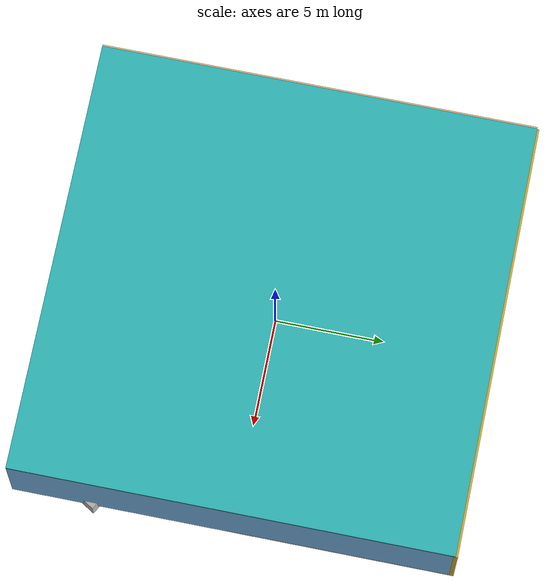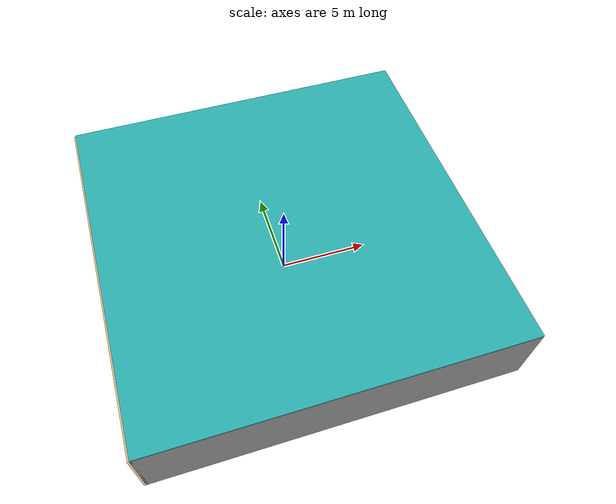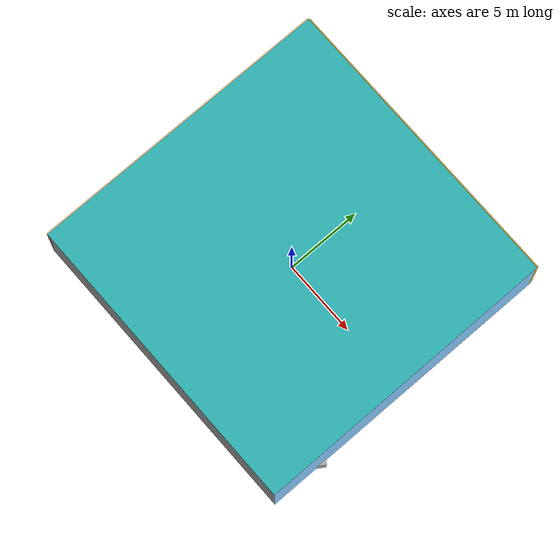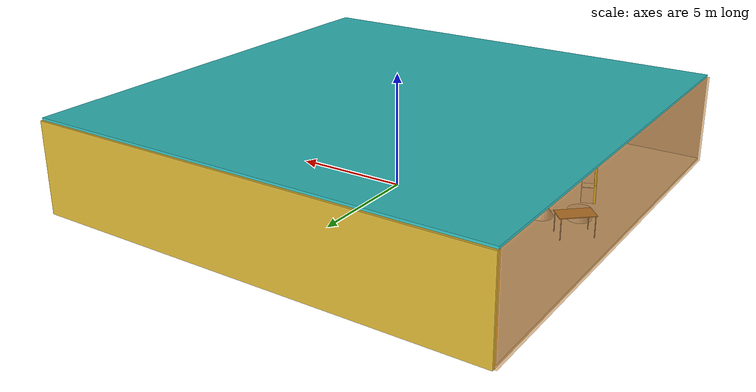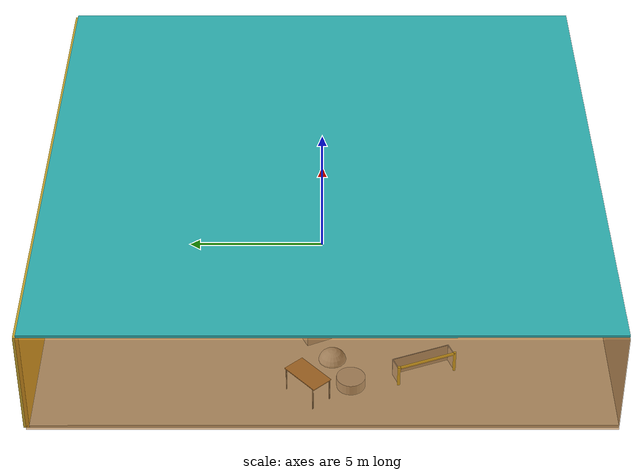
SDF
<sdf version="1.4">
 <world name="default">
  <physics type="ode">
   <max_step_size>0.001</max_step_size>
   <real_time_factor>1</real_time_factor>
   <real_time_update_rate>1000</real_time_update_rate>
   <gravity>0 0 -9.8</gravity>
  </physics>
  <scene><ambient>0.4 0.4 0.4 1</ambient><background>0.7 0.7 0.7 1</background><shadows>1</shadows></scene>
  <model name="Surrounding">
   <static>1</static>
   <link name="Ceiling">
    <collision name="Ceiling_Collision"><geometry><box><size>20 20 0.1</size></box></geometry></collision>
    <visual name="Ceiling_Visual">
     <geometry><box><size>20 20 0.1</size></box></geometry>
     <material>
      <script><uri>file://media/materials/scripts/gazebo.material</uri><name>Gazebo/Turquoise</name></script>
     </material>
    </visual>
    <pose>0 0 4.05 0 0 0</pose>
   </link>
   <link name="Wall_South">
    <collision name="Wall_South_Collision">
     <geometry><box><size>20 0 4</size></box></geometry>
     <pose>0 0 2 0 -0 0</pose>
    </collision>
    <visual name="Wall_South_Visual">
     <pose>0 0 2 0 -0 0</pose>
     <geometry><box><size>20 0 4</size></box></geometry>
     <material>
      <script><uri>file://media/materials/scripts/gazebo.material</uri><name>Gazebo/Grey</name></script>
     </material>
    </visual>
    <velocity_decay><linear>0</linear><angular>0</angular></velocity_decay>
    <pose>0 -10 0 0 -0 0</pose>
   </link>
   <link name="Wall_East">
    <collision name="Wall_21_Collision">
     <geometry><box><size>20 0 4</size></box></geometry>
     <pose>0 0 2 0 -0 0</pose>
    </collision>
    <visual name="Wall_21_Visual">
     <pose>0 0 2 0 -0 0</pose>
     <geometry><box><size>20 0 4</size></box></geometry>
     <material>
      <script><uri>file://media/materials/scripts/gazebo.material</uri><name>Gazebo/SkyBlue</name></script>
     </material>
    </visual>
    <velocity_decay><linear>0</linear><angular>0</angular></velocity_decay>
    <pose>10 0 0 0 -0 1.5708</pose>
   </link>
   <link name="Wall_North">
    <collision name="Wall_22_Collision">
     <geometry><box><size>20 0.2 4</size></box></geometry>
     <pose>0 0 2 0 -0 0</pose>
    </collision>
    <visual name="Wall_22_Visual">
     <pose>0 0 2 0 -0 0</pose>
     <geometry><box><size>20 0.2 4</size></box></geometry>
     <material>
      <script><uri>file://media/materials/scripts/gazebo.material</uri><name>Gazebo/Gold</name></script>
     </material>
    </visual>
    <velocity_decay><linear>0</linear><angular>0</angular></velocity_decay>
    <pose>0 10 0 0 -0 0</pose>
   </link>
   <link name="Wall_West">
    <collision name="Wall_23_Collision">
     <geometry><box><size>20 0.2 4</size></box></geometry>
     <pose>0 0 2 0 -0 0</pose>
    </collision>
    <visual name="Wall_23_Visual">
     <pose>0 0 2 0 -0 0</pose>
     <geometry><box><size>20 0.2 4</size></box></geometry>
     <material>
      <script>
       <uri>file://media/materials/scripts/gazebo.material</uri>
       <name>Gazebo/OrangeTransparent</name>
      </script>
     </material>
    </visual>
    <velocity_decay><linear>0</linear><angular>0</angular></velocity_decay>
    <pose>-10 0 0 0 0 -1.5708</pose>
   </link>
   <link name="Ground_link">
    <collision name="collision">
     <pose>0 0 .05 0 -0 0</pose>
     <geometry><box><size>20 20 0.1</size></box></geometry>
    </collision>
    <visual name="visual">
     <pose>0 0 .05 0 -0 0</pose>
     <geometry><box><size>20 20 0.1</size></box></geometry>
     <material>
      <script><uri>file://media/materials/scripts/gazebo.material</uri><name>Gazebo/CeilingTiled</name></script>
     </material>
    </visual>
   </link>
   <static>1</static>
  </model>
  <spherical_coordinates>
   <surface_model>EARTH_WGS84</surface_model>
   <latitude_deg>0</latitude_deg>
   <longitude_deg>0</longitude_deg>
   <elevation>0</elevation>
   <heading_deg>0</heading_deg>
  </spherical_coordinates>
  <light name="lightball_0" type="diffuse">
   <diffuse>0.8 0.8 0.8 1</diffuse>
   <specular>0.2 0.2 0.2 1</specular>
   <attenuation>
    <range>100</range>
    <constant>0.7</constant>
    <linear>0.01</linear>
    <quadratic>0.001</quadratic>
   </attenuation>
   <direction>-0.5 0.1 -0.9</direction>
   <pose>1.31809419975 3.7624394383 3.7663878023 0 0 0</pose>
  </light>
  <light name="lightball_1" type="diffuse">
   <diffuse>0.8 0.8 0.8 1</diffuse>
   <specular>0.2 0.2 0.2 1</specular>
   <attenuation>
    <range>100</range>
    <constant>0.7</constant>
    <linear>0.01</linear>
    <quadratic>0.001</quadratic>
   </attenuation>
   <direction>-0.5 0.1 -0.9</direction>
   <pose>-3.49124344889 5.14822945441 1.70522012227 0 0 0</pose>
  </light>
  <light name="lightball_2" type="diffuse">
   <diffuse>0.8 0.8 0.8 1</diffuse>
   <specular>0.2 0.2 0.2 1</specular>
   <attenuation>
    <range>100</range>
    <constant>0.7</constant>
    <linear>0.01</linear>
    <quadratic>0.001</quadratic>
   </attenuation>
   <direction>-0.5 0.1 -0.9</direction>
   <pose>-7.7331564308 -8.68293055108 2.81908288709 0 0 0</pose>
  </light>
  <light name="lightball_3" type="diffuse">
   <diffuse>0.8 0.8 0.8 1</diffuse>
   <specular>0.2 0.2 0.2 1</specular>
   <attenuation>
    <range>100</range>
    <constant>0.7</constant>
    <linear>0.01</linear>
    <quadratic>0.001</quadratic>
   </attenuation>
   <direction>-0.5 0.1 -0.9</direction>
   <pose>-4.11002397769 -4.3227743629 2.2890257885 0 0 0</pose>
  </light>
  <light name="lightball_4" type="diffuse">
   <diffuse>0.8 0.8 0.8 1</diffuse>
   <specular>0.2 0.2 0.2 1</specular>
   <attenuation>
    <range>100</range>
    <constant>0.7</constant>
    <linear>0.01</linear>
    <quadratic>0.001</quadratic>
   </attenuation>
   <direction>-0.5 0.1 -0.9</direction>
   <pose>6.4340778802 0.0581703827773 0.99752403209 0 0 0</pose>
  </light>
  <light name="lightball_5" type="diffuse">
   <diffuse>0.8 0.8 0.8 1</diffuse>
   <specular>0.2 0.2 0.2 1</specular>
   <attenuation>
    <range>100</range>
    <constant>0.7</constant>
    <linear>0.01</linear>
    <quadratic>0.001</quadratic>
   </attenuation>
   <direction>-0.5 0.1 -0.9</direction>
   <pose>-7.34231533399 -6.52768720771 2.11752604429 0 0 0</pose>
  </light>
  <light name="lightball_6" type="diffuse">
   <diffuse>0.8 0.8 0.8 1</diffuse>
   <specular>0.2 0.2 0.2 1</specular>
   <attenuation>
    <range>100</range>
    <constant>0.7</constant>
    <linear>0.01</linear>
    <quadratic>0.001</quadratic>
   </attenuation>
   <direction>-0.5 0.1 -0.9</direction>
   <pose>-4.28935899662 -2.42383731844 1.10638566534 0 0 0</pose>
  </light>
  <light name="lightball_7" type="diffuse">
   <diffuse>0.8 0.8 0.8 1</diffuse>
   <specular>0.2 0.2 0.2 1</specular>
   <attenuation>
    <range>100</range>
    <constant>0.7</constant>
    <linear>0.01</linear>
    <quadratic>0.001</quadratic>
   </attenuation>
   <direction>-0.5 0.1 -0.9</direction>
   <pose>4.83279750317 5.37291648895 2.74209255325 0 0 0</pose>
  </light>
  <light name="lightball_8" type="diffuse">
   <diffuse>0.8 0.8 0.8 1</diffuse>
   <specular>0.2 0.2 0.2 1</specular>
   <attenuation>
    <range>100</range>
    <constant>0.7</constant>
    <linear>0.01</linear>
    <quadratic>0.001</quadratic>
   </attenuation>
   <direction>-0.5 0.1 -0.9</direction>
   <pose>7.4575868039 7.51884803377 1.94773568615 0 0 0</pose>
  </light>
  <light name="lightball_9" type="diffuse">
   <diffuse>0.8 0.8 0.8 1</diffuse>
   <specular>0.2 0.2 0.2 1</specular>
   <attenuation>
    <range>100</range>
    <constant>0.7</constant>
    <linear>0.01</linear>
    <quadratic>0.001</quadratic>
   </attenuation>
   <direction>-0.5 0.1 -0.9</direction>
   <pose>7.65203134073 8.46458279565 3.3821570941 0 0 0</pose>
  </light>
  <light name="lightball_10" type="diffuse">
   <diffuse>0.8 0.8 0.8 1</diffuse>
   <specular>0.2 0.2 0.2 1</specular>
   <attenuation>
    <range>100</range>
    <constant>0.7</constant>
    <linear>0.01</linear>
    <quadratic>0.001</quadratic>
   </attenuation>
   <direction>-0.5 0.1 -0.9</direction>
   <pose>5.77894563974 1.27858443804 1.32175248871 0 0 0</pose>
  </light>
  <include>
   <uri>model://robocup_3Dsim_goal</uri>
   <pose>-7.58286324256 -3.61073978958 0 0 0 0.36836622727</pose>
  </include>
  <include>
   <uri>model://textured_shapes</uri>
   <pose>-6.64350500924 -0.345266728722 0 0 0 2.00388836516</pose>
  </include>
  <include><uri>model://table</uri><pose>-8.42520003851 0.503609730208 0 0 0 0.731568545536</pose></include>
  <include><uri>model://cabinet</uri><pose>-4.38496603337 -1.62012800807 0 0 0 2.73106713572</pose></include>
  <include>
   <uri>model://textured_shapes</uri>
   <pose>8.30593475456 -5.6395631385 0 0 0 1.02444502741</pose>
  </include>
 </world>
</sdf>

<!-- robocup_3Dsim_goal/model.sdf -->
<sdf version="1.5">
  <model name="robocup_3d_goal">
    <static>true</static>
    <link name="left_post">
      <pose>0 1.05 0.45 0 0 0</pose>
      <collision name="collision">
        <geometry>
          <cylinder>
            <radius>0.05</radius>
            <length>0.9</length>
          </cylinder>
        </geometry>
      </collision>
      <visual name="visual">
        <geometry>
          <cylinder>
            <radius>0.05</radius>
            <length>0.9</length>
          </cylinder>
        </geometry>
        <material>
          <script>
            <uri>file://media/materials/scripts/gazebo.material</uri>
            <name>Gazebo/ZincYellow</name>
          </script>
        </material>
      </visual>
    </link>
    <link name="left_support_horiz_lower">
      <pose>0.30 1.05 0.01 0 0 0</pose>
      <collision name="collision">
        <geometry>
          <box>
            <size>0.50 0.02 0.02</size>
          </box>
        </geometry>
      </collision>
      <visual name="visual">
        <geometry>
          <box>
            <size>0.50 0.02 0.02</size>
          </box>
        </geometry>
        <material>
          <script>
            <uri>file://media/materials/scripts/gazebo.material</uri>
            <name>Gazebo/White</name>
          </script>
        </material>
      </visual>
    </link>
    <link name="left_support_horiz_upper">
      <pose>0.30 1.05 0.79 0 0 0</pose>
      <collision name="collision">
        <geometry>
          <box>
            <size>0.50 0.02 0.02</size>
          </box>
        </geometry>
      </collision>
      <visual name="visual">
        <geometry>
          <box>
            <size>0.50 0.02 0.02</size>
          </box>
        </geometry>
        <material>
          <script>
            <uri>file://media/materials/scripts/gazebo.material</uri>
            <name>Gazebo/White</name>
          </script>
        </material>
      </visual>
    </link>
    <link name="left_support_vertical">
      <pose>0.56 1.05 0.4 0 1.5708 0</pose>
      <collision name="collision">
        <geometry>
          <box>
            <size>0.80 0.02 0.02</size>
          </box>
        </geometry>
      </collision>
      <visual name="visual">
        <geometry>
          <box>
            <size>0.80 0.02 0.02</size>
          </box>
        </geometry>
        <material>
          <script>
            <uri>file://media/materials/scripts/gazebo.material</uri>
            <name>Gazebo/White</name>
          </script>
        </material>
      </visual>
    </link>
    <link name="right_support_horiz_lower">
      <pose>0.30 -1.05 0.01 0 0 0</pose>
      <collision name="collision">
        <geometry>
          <box>
            <size>0.50 0.02 0.02</size>
          </box>
        </geometry>
      </collision>
      <visual name="visual">
        <geometry>
          <box>
            <size>0.50 0.02 0.02</size>
          </box>
        </geometry>
        <material>
          <script>
            <uri>file://media/materials/scripts/gazebo.material</uri>
            <name>Gazebo/White</name>
          </script>
        </material>
      </visual>
    </link>
    <link name="right_support_horiz_upper">
      <pose>0.30 -1.05 0.79 0 0 0</pose>
      <collision name="collision">
        <geometry>
          <box>
            <size>0.50 0.02 0.02</size>
          </box>
        </geometry>
      </collision>
      <visual name="visual">
        <geometry>
          <box>
            <size>0.50 0.02 0.02</size>
          </box>
        </geometry>
        <material>
          <script>
            <uri>file://media/materials/scripts/gazebo.material</uri>
            <name>Gazebo/White</name>
          </script>
        </material>
      </visual>
    </link>
    <link name="right_support_vertical">
      <pose>0.56 -1.05 0.4 0 1.5708 0</pose>
      <collision name="collision">
        <geometry>
          <box>
            <size>0.80 0.02 0.02</size>
          </box>
        </geometry>
      </collision>
      <visual name="visual">
        <geometry>
          <box>
            <size>0.80 0.02 0.02</size>
          </box>
        </geometry>
        <material>
          <script>
            <uri>file://media/materials/scripts/gazebo.material</uri>
            <name>Gazebo/White</name>
          </script>
        </material>
      </visual>
    </link>
    <link name="center_support_horiz_lower">
      <pose>0.56 0 0.01 0 1.5708 0</pose>
      <collision name="collision">
        <geometry>
          <box>
            <size>0.02 2.08 0.02</size>
          </box>
        </geometry>
      </collision>
      <visual name="visual">
        <geometry>
          <box>
            <size>0.02 2.08 0.02</size>
          </box>
        </geometry>
        <material>
          <script>
            <uri>file://media/materials/scripts/gazebo.material</uri>
            <name>Gazebo/White</name>
          </script>
        </material>
      </visual>
    </link>
    <link name="center_support_horiz_upper">
      <pose>0.56 0 0.79 0 1.5708 0</pose>
      <collision name="collision">
        <geometry>
          <box>
            <size>0.02 2.08 0.02</size>
          </box>
        </geometry>
      </collision>
      <visual name="visual">
        <geometry>
          <box>
            <size>0.02 2.08 0.02</size>
          </box>
        </geometry>
        <material>
          <script>
            <uri>file://media/materials/scripts/gazebo.material</uri>
            <name>Gazebo/White</name>
          </script>
        </material>
      </visual>
    </link>
    <link name="right_post">
      <pose>0 -1.05 0.45 0 0 0</pose>
      <collision name="collision">
        <geometry>
          <cylinder>
            <radius>0.05</radius>
            <length>0.9</length>
          </cylinder>
        </geometry>
      </collision>
      <visual name="visual">
        <geometry>
          <cylinder>
            <radius>0.05</radius>
            <length>0.9</length>
          </cylinder>
        </geometry>
        <material>
          <script>
            <uri>file://media/materials/scripts/gazebo.material</uri>
            <name>Gazebo/ZincYellow</name>
          </script>
        </material>
      </visual>
    </link>
    <link name="crossbar">
      <pose>0 0 0.85 1.57 1.57 0</pose>
      <collision name="collision">
        <geometry>
          <cylinder>
            <radius>0.05</radius>
            <length>2.0</length>
          </cylinder>
        </geometry>
      </collision>
      <visual name="visual">
        <geometry>
          <cylinder>
            <radius>0.05</radius>
            <length>2.0</length>
          </cylinder>
        </geometry>
        <material>
          <script>
            <uri>file://media/materials/scripts/gazebo.material</uri>
            <name>Gazebo/ZincYellow</name>
          </script>
        </material>
      </visual>
    </link>
    <link name="center_net">
      <pose>0.56 0 0.40 0 0 0</pose>
      <collision name="collision">
        <geometry>
          <box>
            <size>0.01 2.1 0.80</size>
          </box>
        </geometry>
      </collision>
      <visual name="visual">
        <geometry>
          <box>
            <size>0.01 2.1 0.80</size>
          </box>
        </geometry>
        <material>
          <script>
            <uri>model://../model_source/models/robocup09_spl_field/materials/scripts/</uri>
            <uri>model://../model_source/models/robocup09_spl_field/materials/textures/</uri>
            <name>RoboCup/Net</name>
          </script>
        </material>
      </visual>
    </link>
    <link name="left_net">
      <pose>0.30 1.05 0.40 0 0 0</pose>
      <collision name="collision">
        <geometry>
          <box>
            <size>0.50 0.01 0.76</size>
          </box>
        </geometry>
      </collision>
      <visual name="visual">
        <geometry>
          <box>
            <size>0.50 0.01 0.76</size>
          </box>
        </geometry>
        <material>
          <script>
            <uri>model://../model_source/models/robocup09_spl_field/materials/scripts/</uri>
            <uri>model://../model_source/models/robocup09_spl_field/materials/textures/</uri>
            <name>RoboCup/Net</name>
          </script>
        </material>
      </visual>
    </link>
    <link name="right_net">
      <pose>0.30 -1.05 0.40 0 0 0</pose>
      <collision name="collision">
        <geometry>
          <box>
            <size>0.50 0.01 0.76</size>
          </box>
        </geometry>
      </collision>
      <visual name="visual">
        <geometry>
          <box>
            <size>0.50 0.01 0.76</size>
          </box>
        </geometry>
        <material>
          <script>
            <uri>model://../model_source/models/robocup09_spl_field/materials/scripts/</uri>
            <uri>model://../model_source/models/robocup09_spl_field/materials/textures/</uri>
            <name>RoboCup/Net</name>
          </script>
        </material>
      </visual>
    </link>
  </model>
</sdf>

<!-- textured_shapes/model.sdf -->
<sdf version="1.6">
  <model name="textured_shapes">
    <pose>0 0 0.5 0 0 0</pose>
    <link name="box">
      <pose>0 -1.5 0 0 0 0</pose>
      <collision name="collision">
        <geometry>
          <box>
            <size>1 1 1</size>
          </box>
        </geometry>
      </collision>
      <visual name="visual">
        <geometry>
          <box>
            <size>1 1 1</size>
          </box>
        </geometry>
        <material>
          <script>
            <uri>model://../model_source/models/textured_shapes/materials/scripts</uri>
            <uri>model://../model_source/models/textured_shapes/materials/textures</uri>
            <name>TexturedShape/Squares</name>
          </script>
        </material>
      </visual>
    </link>
    <link name="sphere">
      <collision name="collision">
        <geometry>
          <sphere>
            <radius>0.5</radius>
          </sphere>
        </geometry>
      </collision>
      <visual name="visual">
        <geometry>
          <sphere>
            <radius>0.5</radius>
          </sphere>
        </geometry>
        <material>
          <script>
            <uri>model://../model_source/models/textured_shapes/materials/scripts</uri>
            <uri>model://../model_source/models/textured_shapes/materials/textures</uri>
            <name>TexturedShape/Squares</name>
          </script>
        </material>
      </visual>
    </link>
    <link name="cylinder">
      <pose>0 1.5 0 0 0 0</pose>
      <collision name="collision">
        <geometry>
          <cylinder>
            <radius>0.5</radius>
            <length>1</length>
          </cylinder>
        </geometry>
      </collision>
      <visual name="visual">
        <geometry>
          <cylinder>
            <radius>0.5</radius>
            <length>1</length>
          </cylinder>
        </geometry>
        <material>
          <script>
            <uri>model://../model_source/models/textured_shapes/materials/scripts</uri>
            <uri>model://../model_source/models/textured_shapes/materials/textures</uri>
            <name>TexturedShape/Squares</name>
          </script>
        </material>
      </visual>
    </link>
  </model>
</sdf>

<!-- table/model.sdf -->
<sdf version="1.5">
  <model name="table">
    <static>true</static>
    <link name="link">
      <collision name="surface">
        <pose>0 0 1.0 0 0 0</pose>
        <geometry>
          <box>
            <size>1.5 0.8 0.03</size>
          </box>
        </geometry>
        <surface>
          <friction>
            <ode>
              <mu>0.6</mu>
              <mu2>0.6</mu2>
            </ode>
          </friction>
        </surface>
      </collision>
      <visual name="visual1">
        <pose>0 0 1.0 0 0 0</pose>
        <geometry>
          <box>
            <size>1.5 0.8 0.03</size>
          </box>
        </geometry>
        <material>
          <script>
            <uri>model://media/materials/scripts/gazebo.material</uri>
            <name>Gazebo/Wood</name>
          </script>
        </material>
      </visual>
      <collision name="front_left_leg">
        <pose>0.68 0.38 0.5 0 0 0</pose>
        <geometry>
          <cylinder>
            <radius>0.02</radius>
            <length>1.0</length>
          </cylinder>
        </geometry>
      </collision>
      <visual name="front_left_leg">
        <pose>0.68 0.38 0.5 0 0 0</pose>
        <geometry>
          <cylinder>
            <radius>0.02</radius>
            <length>1.0</length>
          </cylinder>
        </geometry>
        <material>
          <script>
            <uri>model://media/materials/scripts/gazebo.material</uri>
            <name>Gazebo/Grey</name>
          </script>
        </material>
      </visual>
      <collision name="front_right_leg">
        <pose>0.68 -0.38 0.5 0 0 0</pose>
        <geometry>
          <cylinder>
            <radius>0.02</radius>
            <length>1.0</length>
          </cylinder>
        </geometry>
      </collision>
      <visual name="front_right_leg">
        <pose>0.68 -0.38 0.5 0 0 0</pose>
        <geometry>
          <cylinder>
            <radius>0.02</radius>
            <length>1.0</length>
          </cylinder>
        </geometry>
        <material>
          <script>
            <uri>model://media/materials/scripts/gazebo.material</uri>
            <name>Gazebo/Grey</name>
          </script>
        </material>
      </visual>
      <collision name="back_right_leg">
        <pose>-0.68 -0.38 0.5 0 0 0</pose>
        <geometry>
          <cylinder>
            <radius>0.02</radius>
            <length>1.0</length>
          </cylinder>
        </geometry>
      </collision>
      <visual name="back_right_leg">
        <pose>-0.68 -0.38 0.5 0 0 0</pose>
        <geometry>
          <cylinder>
            <radius>0.02</radius>
            <length>1.0</length>
          </cylinder>
        </geometry>
        <material>
          <script>
            <uri>model://media/materials/scripts/gazebo.material</uri>
            <name>Gazebo/Grey</name>
          </script>
        </material>
      </visual>
      <collision name="back_left_leg">
        <pose>-0.68 0.38 0.5 0 0 0</pose>
        <geometry>
          <cylinder>
            <radius>0.02</radius>
            <length>1.0</length>
          </cylinder>
        </geometry>
      </collision>
      <visual name="back_left_leg">
        <pose>-0.68 0.38 0.5 0 0 0</pose>
        <geometry>
          <cylinder>
            <radius>0.02</radius>
            <length>1.0</length>
          </cylinder>
        </geometry>
        <material>
          <script>
            <uri>model://media/materials/scripts/gazebo.material</uri>
            <name>Gazebo/Grey</name>
          </script>
        </material>
      </visual>
    </link>
  </model>
</sdf>

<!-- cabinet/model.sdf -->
<sdf version="1.5">
  <model name="cabinet">
    <static>true</static>
    <link name="cabinet_bottom_plate">
      <inertial>
        <pose>0 0 -1 0 0 0</pose>
        <inertia>
          <ixx>2.050000</ixx>
          <ixy>0</ixy>
          <ixz>0</ixz>
          <iyy>2.050000</iyy>
          <iyz>0</iyz>
          <izz>2.050000</izz>
        </inertia>
        <mass>25.000000</mass>
      </inertial>
      <collision name="cabinet_bottom_plate_geom">
        <pose>0 0 0.010000 0 0 0</pose>
        <geometry>
          <box>
            <size>0.450000 0.450000 0.020000</size>
          </box>
        </geometry>
      </collision>
      <visual name="cabinet_bottom_plate_geom_visual">
        <pose>0 0 0.010000 0 0 0</pose>
        <geometry>
          <box>
            <size>0.450000 0.450000 0.020000</size>
          </box>
        </geometry>
        <material>
          <script>
            <uri>model://media/materials/scripts/gazebo.material</uri>
            <name>Gazebo/Wood</name>
          </script>
        </material>
      </visual>
      <collision name="cabinet_bottom_plate_geom_cabinet_back_plate">
        <pose>0.235000 0 0.510000 0 0 0</pose>
        <geometry>
          <box>
            <size>0.020000 0.450000 1.020000</size>
          </box>
        </geometry>
      </collision>
      <visual name="cabinet_bottom_plate_geom_cabinet_back_plate_visual">
        <pose>0.235000 0 0.510000 0 0 0</pose>
        <geometry>
          <box>
            <size>0.020000 0.450000 1.020000</size>
          </box>
        </geometry>
        <material>
          <script>
            <uri>model://media/materials/scripts/gazebo.material</uri>
            <name>Gazebo/Wood</name>
          </script>
        </material>
      </visual>
      <collision name="cabinet_bottom_plate_geom_cabinet_left_plate">
        <pose>0 0.235000 0.510000 0 0 0</pose>
        <geometry>
          <box>
            <size>0.450000 0.020000 1.020000</size>
          </box>
        </geometry>
      </collision>
      <visual name="cabinet_bottom_plate_geom_cabinet_left_plate_visual">
        <pose>0 0.235000 0.510000 0 0 0</pose>
        <geometry>
          <box>
            <size>0.450000 0.020000 1.020000</size>
          </box>
        </geometry>
        <material>
          <script>
            <uri>model://media/materials/scripts/gazebo.material</uri>
            <name>Gazebo/Wood</name>
          </script>
        </material>
      </visual>
      <collision name="cabinet_bottom_plate_geom_cabinet_middle_plate">
        <pose>0 0 0.510000 0 0 0</pose>
        <geometry>
          <box>
            <size>0.450000 0.450000 0.020000</size>
          </box>
        </geometry>
      </collision>
      <visual name="cabinet_bottom_plate_geom_cabinet_middle_plate_visual">
        <pose>0 0 0.510000 0 0 0</pose>
        <geometry>
          <box>
            <size>0.450000 0.450000 0.020000</size>
          </box>
        </geometry>
        <material>
          <script>
            <uri>model://media/materials/scripts/gazebo.material</uri>
            <name>Gazebo/Wood</name>
          </script>
        </material>
      </visual>
      <collision name="cabinet_bottom_plate_geom_cabinet_right_plate">
        <pose>0 -0.235000 0.510000 0 0 0</pose>
        <geometry>
          <box>
            <size>0.450000 0.020000 1.020000</size>
          </box>
        </geometry>
      </collision>
      <visual name="cabinet_bottom_plate_geom_cabinet_right_plate_visual">
        <pose>0 -0.235000 0.510000 0 0 0</pose>
        <geometry>
          <box>
            <size>0.450000 0.020000 1.020000</size>
          </box>
        </geometry>
        <material>
          <script>
            <uri>model://media/materials/scripts/gazebo.material</uri>
            <name>Gazebo/Wood</name>
          </script>
        </material>
      </visual>
      <collision name="cabinet_bottom_plate_geom_cabinet_top_plate">
        <pose>0 0 1.010000 0 0 0</pose>
        <geometry>
          <box>
            <size>0.450000 0.450000 0.020000</size>
          </box>
        </geometry>
      </collision>
      <visual name="cabinet_bottom_plate_geom_cabinet_top_plate_visual">
        <pose>0 0 1.010000 0 0 0</pose>
        <geometry>
          <box>
            <size>0.450000 0.450000 0.020000</size>
          </box>
        </geometry>
        <material>
          <script>
            <uri>model://media/materials/scripts/gazebo.material</uri>
            <name>Gazebo/Wood</name>
          </script>
        </material>
      </visual>
    </link>
  </model>
</sdf>
